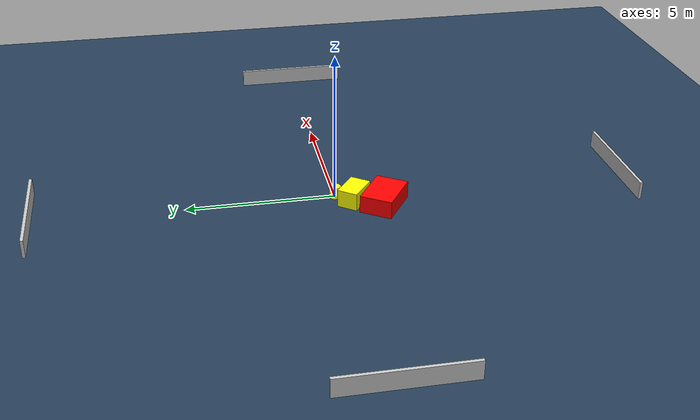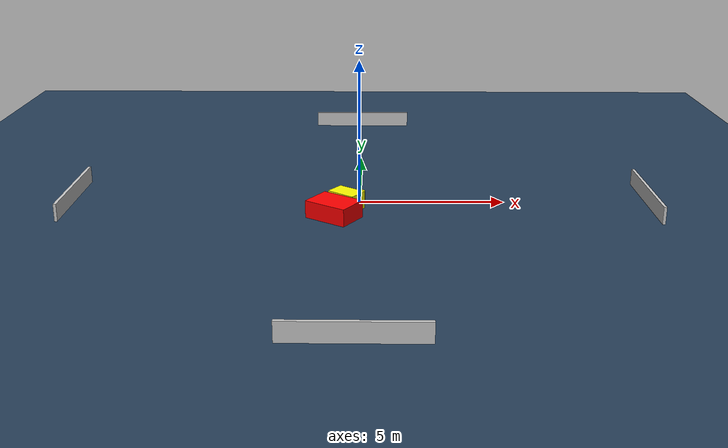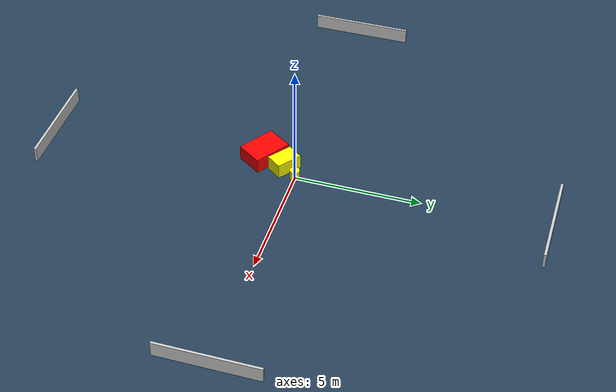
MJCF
<?xml version="1.0" ?>
<mujoco model="generated_environment">
  <option timestep="0.01" integrator="RK4" cone="elliptic"/>
  <default>
    <geom density="1"/>
  </default>
  <asset>
    <texture builtin="gradient" height="3072" name="skybox" rgb1="0.3 0.5 0.7" rgb2="0 0 0" type="skybox" width="512"/>
    <texture builtin="checker" height="300" name="groundplane" rgb1="0.2 0.3 0.4" rgb2="0.1 0.2 0.3" type="2d" width="300"/>
    <material name="groundplane" reflectance="0.2" texrepeat="5 5" texture="groundplane"/>
  </asset>
  <worldbody>
    <light dir="0 0 -1" directional="true" pos="0 0 1.5"/>
    <geom condim="3" friction="0.5 0.005 0.001" material="groundplane" name="floor" pos="0 0 0" size="0 0 0.05" type="plane"/>
    <body name="walls">
      <geom name="wall_1" condim="4" pos="-10.0 0.0 0.3" rgba="0.800000011920929 0.800000011920929 0.800000011920929 1.0" size="0.05 2.0 0.3" type="box"/>
      <geom name="wall_2" condim="4" pos="10.0 0.0 0.3" rgba="0.800000011920929 0.800000011920929 0.800000011920929 1.0" size="0.05 2.0 0.3" type="box"/>
      <geom name="wall_3" condim="4" pos="0.0 -10.0 0.3" rgba="0.800000011920929 0.800000011920929 0.800000011920929 1.0" size="2.0 0.05 0.3" type="box"/>
      <geom name="wall_4" condim="4" pos="0.0 10.0 0.3" rgba="0.800000011920929 0.800000011920929 0.800000011920929 1.0" size="2.0 0.05 0.3" type="box"/>
    </body>
    <body name="robot">
      <joint name="joint_x" type="slide" pos="0 0 0" axis="1 0 0"/>
      <joint name="joint_y" type="slide" pos="0 0 0" axis="0 1 0"/>
      <geom name="robot" type="cylinder" pos="0.0 0.0 0.2" size="0.2 0.2 0.0" mass="5.0" friction="1.0 0.005 0.0001" condim="4" rgba="1.0 1.0 0.0 1.0"/>
    </body>
    <body name="obstacle_1_movable">
      <geom name="obstacle_1_movable" condim="4" pos="-0.4389973731324954 -0.557808278144585 0.3" euler="0 0 322.9387007946996" friction="0.0 0.005 0.001" rgba="1.0 1.0 0.0 1.0" size="0.5247378073724854 0.3480992213483831 0.3" type="box" mass="0.1"/>
      <joint type="free"/>
    </body>
    <body name="obstacle_2_static">
      <geom name="obstacle_2_static" condim="4" pos="-0.8300864634515893 -1.4947727266967807 0.3" euler="0 0 236.39100789613414" friction="0.0 0.005 0.001" rgba="1.0 0.0 0.0 1.0" size="0.5499889345823045 0.7782935695349131 0.3" type="box"/>
    </body>
  </worldbody>
  <actuator>
    <motor name="actuator_x" joint="joint_x" gear="1" ctrlrange="-1 1"/>
    <motor name="actuator_y" joint="joint_y" gear="1" ctrlrange="-1 1"/>
  </actuator>
</mujoco>
